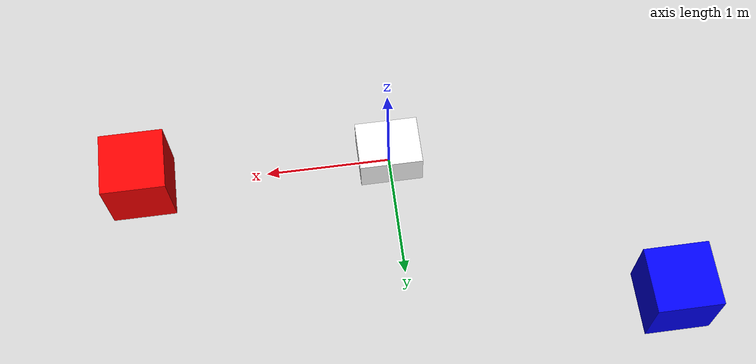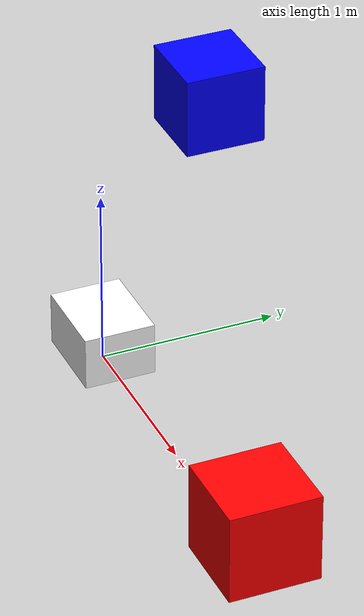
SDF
<?xml version="1.0" ?>
<sdf version="1.9">
  <world name="rag_robot_world">

    <!-- Sun Light -->
    <light name="sun" type="directional">
      <pose>0 0 10 0 0 0</pose>
      <diffuse>0.8 0.8 0.8 1</diffuse>
      <specular>0.2 0.2 0.2 1</specular>
      <direction>-0.5 0.1 -0.9</direction>
      <cast_shadows>true</cast_shadows>
    </light>

    <!-- Ground Plane -->
    <model name="ground_plane">
      <static>true</static>
      <link name="link">
        <collision name="collision">
          <geometry>
            <plane>
              <normal>0 0 1</normal>
              <size>100 100</size>
            </plane>
          </geometry>
        </collision>
        <visual name="visual">
          <geometry>
            <plane>
              <normal>0 0 1</normal>
              <size>100 100</size>
            </plane>
          </geometry>
          <material>
            <ambient>0.8 0.8 0.8 1</ambient>
            <diffuse>0.8 0.8 0.8 1</diffuse>
          </material>
        </visual>
      </link>
    </model>

   <!-- RAG Robot -->
    <include>
      <uri>file:///home/jayden/rag_robot_automation/simulation/models/rag_robot/model.sdf</uri>
      <pose>0 0 0.15 0 0 0</pose>
    </include>
    <!-- Obstacles -->
    <model name="obstacle_1">
      <static>true</static>
      <pose>2 0 0.25 0 0 0</pose>
      <link name="link">
        <collision name="collision">
          <geometry>
            <box>
              <size>0.5 0.5 0.5</size>
            </box>
          </geometry>
        </collision>
        <visual name="visual">
          <geometry>
            <box>
              <size>0.5 0.5 0.5</size>
            </box>
          </geometry>
          <material>
            <ambient>1 0 0 1</ambient>
            <diffuse>1 0 0 1</diffuse>
          </material>
        </visual>
      </link>
    </model>

    <model name="obstacle_2">
      <static>true</static>
      <pose>-2 1.5 0.25 0 0 0</pose>
      <link name="link">
        <collision name="collision">
          <geometry>
            <box>
              <size>0.5 0.5 0.5</size>
            </box>
          </geometry>
        </collision>
        <visual name="visual">
          <geometry>
            <box>
              <size>0.5 0.5 0.5</size>
            </box>
          </geometry>
          <material>
            <ambient>0 0 1 1</ambient>
            <diffuse>0 0 1 1</diffuse>
          </material>
        </visual>
      </link>
    </model>

    <!-- Physics -->
    <physics name="default_physics" type="bullet">
      <max_step_size>0.001</max_step_size>
      <real_time_factor>1.0</real_time_factor>
    </physics>

  </world>
</sdf>

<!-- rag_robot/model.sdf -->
<sdf version="1.9">
  <model name="rag_robot">
    <self_collide>false</self_collide>

    <!-- Base -->
    <link name="base_link">
      <inertial>
        <mass>10.0</mass>
        <inertia>
          <ixx>0.1</ixx>
          <ixy>0.0</ixy>
          <ixz>0.0</ixz>
          <iyy>0.1</iyy>
          <iyz>0.0</iyz>
          <izz>0.1</izz>
        </inertia>
      </inertial>
      <visual name="base_visual">
        <geometry>
          <box>
            <size>0.5 0.4 0.3</size>
          </box>
        </geometry>
        <material>
          <ambient>1 1 1 1</ambient>
          <diffuse>1 1 1 1</diffuse>
        </material>
      </visual>
      <collision name="base_collision">
        <geometry>
          <box>
            <size>0.5 0.4 0.3</size>
          </box>
        </geometry>
      </collision>
    </link>

    <!-- Left Wheel -->
    <link name="left_wheel">
      <inertial>
        <mass>1.0</mass>
        <inertia>
          <ixx>0.01</ixx>
          <ixy>0.0</ixy>
          <ixz>0.0</ixz>
          <iyy>0.01</iyy>
          <iyz>0.0</iyz>
          <izz>0.01</izz>
        </inertia>
      </inertial>
      <visual name="left_wheel_visual">
        <geometry>
          <cylinder>
            <radius>0.1</radius>
            <length>0.1</length>
          </cylinder>
        </geometry>
        <material>
          <ambient>0 0 0 1</ambient>
          <diffuse>0 0 0 1</diffuse>
        </material>
      </visual>
      <collision name="left_wheel_collision">
        <geometry>
          <cylinder>
            <radius>0.1</radius>
            <length>0.1</length>
          </cylinder>
        </geometry>
      </collision>
    </link>

    <!-- Right Wheel -->
    <link name="right_wheel">
      <inertial>
        <mass>1.0</mass>
        <inertia>
          <ixx>0.01</ixx>
          <ixy>0.0</ixy>
          <ixz>0.0</ixz>
          <iyy>0.01</iyy>
          <iyz>0.0</iyz>
          <izz>0.01</izz>
        </inertia>
      </inertial>
      <visual name="right_wheel_visual">
        <geometry>
          <cylinder>
            <radius>0.1</radius>
            <length>0.1</length>
          </cylinder>
        </geometry>
        <material>
          <ambient>0 0 0 1</ambient>
          <diffuse>0 0 0 1</diffuse>
        </material>
      </visual>
      <collision name="right_wheel_collision">
        <geometry>
          <cylinder>
            <radius>0.1</radius>
            <length>0.1</length>
          </cylinder>
        </geometry>
      </collision>
    </link>

    <!-- Caster Wheel -->
    <link name="caster_wheel">
      <inertial>
        <mass>0.5</mass>
        <inertia>
          <ixx>0.001</ixx>
          <ixy>0.0</ixy>
          <ixz>0.0</ixz>
          <iyy>0.001</iyy>
          <iyz>0.0</iyz>
          <izz>0.001</izz>
        </inertia>
      </inertial>
      <visual name="caster_wheel_visual">
        <geometry>
          <sphere>
            <radius>0.05</radius>
          </sphere>
        </geometry>
        <material>
          <ambient>0.5 0.5 0.5 1</ambient>
          <diffuse>0.5 0.5 0.5 1</diffuse>
        </material>
      </visual>
      <collision name="caster_wheel_collision">
        <geometry>
          <sphere>
            <radius>0.05</radius>
          </sphere>
        </geometry>
      </collision>
    </link>

    <!-- Joints -->
    <joint name="left_wheel_joint" type="revolute">
      <parent>base_link</parent>
      <child>left_wheel</child>
      <axis>
        <xyz>0 1 0</xyz>
        <limit>
          <lower>-10</lower>
          <upper>10</upper>
          <effort>10</effort>
          <velocity>1</velocity>
        </limit>
      </axis>
      <pose>-0.15 0.2 0 0 0 0</pose>
    </joint>

    <joint name="right_wheel_joint" type="revolute">
      <parent>base_link</parent>
      <child>right_wheel</child>
      <axis>
        <xyz>0 1 0</xyz>
        <limit>
          <lower>-10</lower>
          <upper>10</upper>
          <effort>10</effort>
          <velocity>1</velocity>
        </limit>
      </axis>
      <pose>-0.15 -0.2 0 0 0 0</pose>
    </joint>

    <joint name="caster_wheel_joint" type="fixed">
      <parent>base_link</parent>
      <child>caster_wheel</child>
      <pose>0.2 0 -0.15 0 0 0</pose>
    </joint>

  </model>
</sdf>
